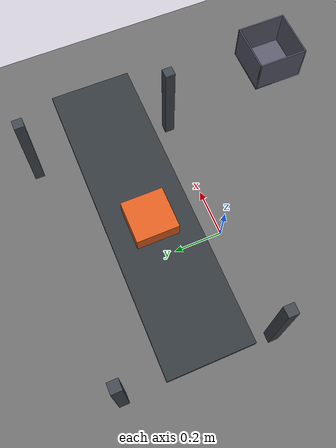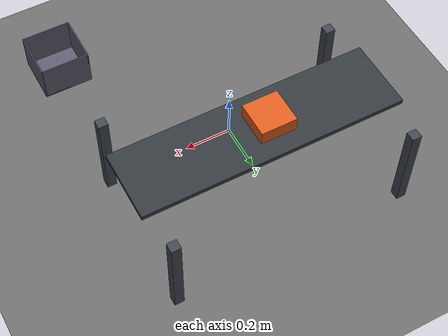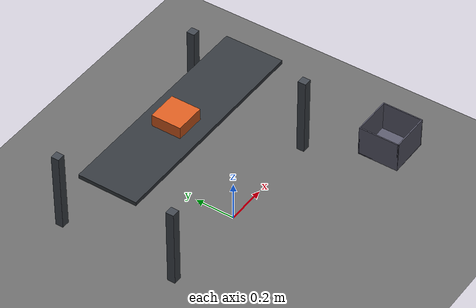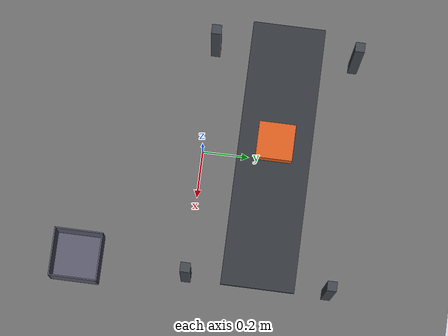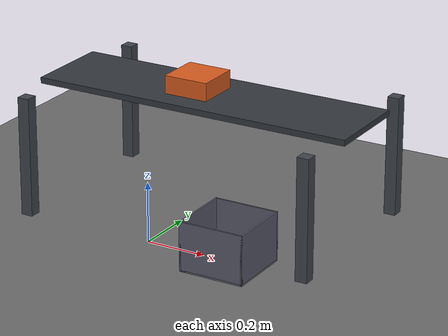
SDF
<?xml version="1.0" ?>
<sdf version="1.6">
  <world name="scene_c_conveyor_sortation">
    <gravity>0 0 -9.81</gravity>

    <gui fullscreen="0">
      <camera name="user_camera">
        <pose>1.45 -1.25 0.85 0 0.48 2.35</pose>
        <view_controller>orbit</view_controller>
      </camera>
    </gui>

    <!-- 地面 -->
    <model name="ground_plane">
      <static>true</static>
      <link name="link">
        <collision name="collision">
          <geometry><plane><normal>0 0 1</normal><size>4 4</size></plane></geometry>
        </collision>
        <visual name="visual">
          <geometry><plane><normal>0 0 1</normal><size>4 4</size></plane></geometry>
          <material>
            <ambient>0.42 0.42 0.42 1</ambient>
            <diffuse>0.42 0.42 0.42 1</diffuse>
          </material>
        </visual>
      </link>
    </model>

    <!-- 光照 -->
    <light name="sun" type="directional">
      <cast_shadows>true</cast_shadows>
      <pose>0 0 5 0 0 0</pose>
      <diffuse>0.8 0.8 0.8 1</diffuse>
      <specular>0.2 0.2 0.2 1</specular>
      <attenuation>
        <range>1000</range><constant>0.9</constant>
        <linear>0.01</linear><quadratic>0.001</quadratic>
      </attenuation>
      <direction>-0.5 0.1 -0.9</direction>
    </light>

    <!-- 传送带支架 + 带面 (start=-0.50→end=0.60, y=0.30, z=0.40) -->
    <model name="conveyor_belt">
      <static>true</static>
      <pose>0.05 0.30 0.40 0 0 0</pose>
      <link name="belt_link">
        <collision name="belt_collision">
          <geometry><box><size>1.10 0.30 0.02</size></box></geometry>
        </collision>
        <visual name="belt_visual">
          <geometry><box><size>1.10 0.30 0.02</size></box></geometry>
          <material>
            <ambient>0.20 0.22 0.24 1</ambient>
            <diffuse>0.20 0.22 0.24 1</diffuse>
          </material>
        </visual>
      </link>
    </model>
    <!-- 传送带支腿 -->
    <model name="conveyor_legs">
      <static>true</static>
      <pose>0.05 0.30 0.20 0 0 0</pose>
      <link name="legs_link">
        <collision name="leg_fl"><pose>-0.50 -0.30 0 0 0 0</pose>
          <geometry><box><size>0.04 0.04 0.40</size></box></geometry></collision>
        <visual name="leg_fl_vis"><pose>-0.50 -0.30 0 0 0 0</pose>
          <geometry><box><size>0.04 0.04 0.40</size></box></geometry>
          <material><ambient>0.25 0.27 0.30 1</ambient><diffuse>0.25 0.27 0.30 1</diffuse></material></visual>
        <collision name="leg_fr"><pose>-0.50 0.30 0 0 0 0</pose>
          <geometry><box><size>0.04 0.04 0.40</size></box></geometry></collision>
        <visual name="leg_fr_vis"><pose>-0.50 0.30 0 0 0 0</pose>
          <geometry><box><size>0.04 0.04 0.40</size></box></geometry>
          <material><ambient>0.25 0.27 0.30 1</ambient><diffuse>0.25 0.27 0.30 1</diffuse></material></visual>
        <collision name="leg_bl"><pose>0.50 -0.30 0 0 0 0</pose>
          <geometry><box><size>0.04 0.04 0.40</size></box></geometry></collision>
        <visual name="leg_bl_vis"><pose>0.50 -0.30 0 0 0 0</pose>
          <geometry><box><size>0.04 0.04 0.40</size></box></geometry>
          <material><ambient>0.25 0.27 0.30 1</ambient><diffuse>0.25 0.27 0.30 1</diffuse></material></visual>
        <collision name="leg_br"><pose>0.50 0.30 0 0 0 0</pose>
          <geometry><box><size>0.04 0.04 0.40</size></box></geometry></collision>
        <visual name="leg_br_vis"><pose>0.50 0.30 0 0 0 0</pose>
          <geometry><box><size>0.04 0.04 0.40</size></box></geometry>
          <material><ambient>0.25 0.27 0.30 1</ambient><diffuse>0.25 0.27 0.30 1</diffuse></material></visual>
      </link>
    </model>

    <!-- 料框 (x=0.55, y=-0.45, top=0.45) -->
    <model name="bin">
      <static>true</static>
      <pose>0.55 -0.45 0.30 0 0 0</pose>
      <link name="bin_link">
        <collision name="bin_bottom"><pose>0 0 -0.0725 0 0 0</pose>
          <geometry><box><size>0.20 0.20 0.005</size></box></geometry></collision>
        <visual name="bin_bottom_vis"><pose>0 0 -0.0725 0 0 0</pose>
          <geometry><box><size>0.20 0.20 0.005</size></box></geometry>
          <material><ambient>0.35 0.35 0.42 1</ambient><diffuse>0.35 0.35 0.42 1</diffuse></material></visual>
        <collision name="bin_front"><pose>0 0.0975 0 0 0 0</pose>
          <geometry><box><size>0.20 0.005 0.15</size></box></geometry></collision>
        <visual name="bin_front_vis"><pose>0 0.0975 0 0 0 0</pose>
          <geometry><box><size>0.20 0.005 0.15</size></box></geometry>
          <material><ambient>0.35 0.35 0.42 1</ambient><diffuse>0.35 0.35 0.42 1</diffuse></material></visual>
        <collision name="bin_back"><pose>0 -0.0975 0 0 0 0</pose>
          <geometry><box><size>0.20 0.005 0.15</size></box></geometry></collision>
        <visual name="bin_back_vis"><pose>0 -0.0975 0 0 0 0</pose>
          <geometry><box><size>0.20 0.005 0.15</size></box></geometry>
          <material><ambient>0.35 0.35 0.42 1</ambient><diffuse>0.35 0.35 0.42 1</diffuse></material></visual>
        <collision name="bin_left"><pose>0.0975 0 0 0 0 0</pose>
          <geometry><box><size>0.005 0.20 0.15</size></box></geometry></collision>
        <visual name="bin_left_vis"><pose>0.0975 0 0 0 0 0</pose>
          <geometry><box><size>0.005 0.20 0.15</size></box></geometry>
          <material><ambient>0.35 0.35 0.42 1</ambient><diffuse>0.35 0.35 0.42 1</diffuse></material></visual>
        <collision name="bin_right"><pose>-0.0975 0 0 0 0 0</pose>
          <geometry><box><size>0.005 0.20 0.15</size></box></geometry></collision>
        <visual name="bin_right_vis"><pose>-0.0975 0 0 0 0 0</pose>
          <geometry><box><size>0.005 0.20 0.15</size></box></geometry>
          <material><ambient>0.35 0.35 0.42 1</ambient><diffuse>0.35 0.35 0.42 1</diffuse></material></visual>
      </link>
    </model>

    <!-- 货物在传送带上 (x=0.0, y=0.30, z=0.42) -->
    <model name="cargo_box">
      <pose>0.0 0.30 0.42 0 0 0</pose>
      <link name="link">
        <inertial>
          <mass>0.5</mass>
          <inertia>
            <ixx>0.00156</ixx><iyy>0.00156</iyy><izz>0.00156</izz>
            <ixy>0</ixy><ixz>0</ixz><iyz>0</iyz>
          </inertia>
        </inertial>
        <collision name="collision">
          <geometry><box><size>0.15 0.15 0.10</size></box></geometry>
          <surface><friction><ode><mu>0.6</mu><mu2>0.6</mu2></ode></friction></surface>
        </collision>
        <visual name="visual">
          <geometry><box><size>0.15 0.15 0.10</size></box></geometry>
          <material>
            <ambient>0.85 0.36 0.12 1</ambient>
            <diffuse>0.85 0.36 0.12 1</diffuse>
          </material>
        </visual>
      </link>
    </model>

    <plugin name="gazebo_ros_state" filename="libgazebo_ros_state.so">
      <ros><namespace>/gazebo</namespace></ros>
      <update_rate>50.0</update_rate>
    </plugin>
  </world>
</sdf>
